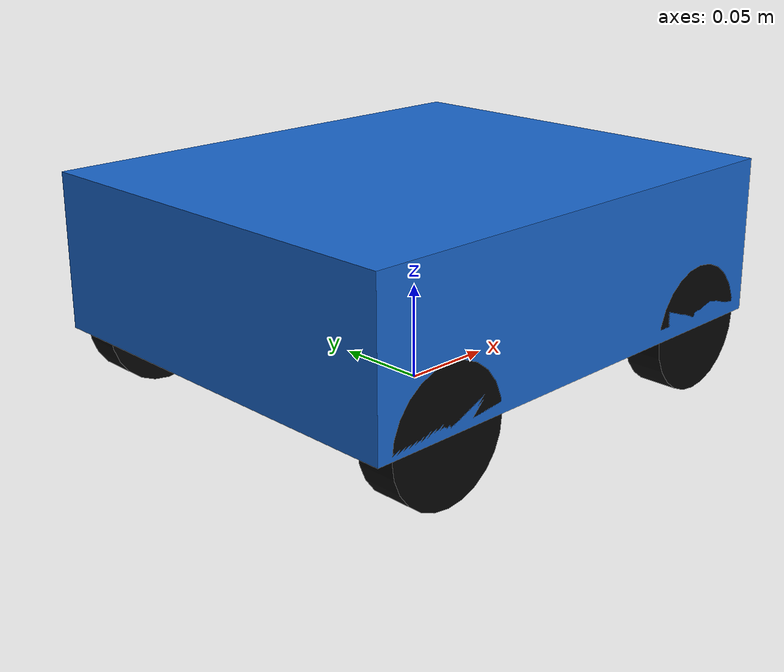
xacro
<?xml version="1.0"?>
<robot xmlns:xacro="http://www.ros.org/wiki/xacro" name="diff_drive_car">

  <!-- 引入差速驱动插件 -->
  <xacro:include filename="$(find botlab_diff_description)/urdf/gazebo_control_plugin.xacro"/>

  <!-- 参数定义 -->
  <xacro:property name="chassis_length" value="0.26"/>     <!-- 底盘长度 26cm -->
  <xacro:property name="chassis_width"  value="0.22"/>     <!-- 底盘宽度 22cm -->
  <xacro:property name="chassis_height" value="0.08"/>    <!-- 底盘高度 8cm -->
  <xacro:property name="wheel_radius"   value="0.0325"/>  <!-- 轮子半径 3.25cm（直径6.5cm） -->
  <xacro:property name="wheel_width"    value="0.02"/>    <!-- 轮胎厚度 2cm -->
  <xacro:property name="wheelbase"      value="0.18"/>    <!-- 前后轮距 -->
  <xacro:property name="track"          value="0.20"/>    <!-- 左右轮距 -->

  <!-- 底盘 -->
  <link name="base_link">
    <visual>
      <geometry>
        <box size="${chassis_length} ${chassis_width} ${chassis_height}"/>
      </geometry>
      <origin xyz="0 0 ${wheel_radius + chassis_height/2}" rpy="0 0 0"/>
      <material name="blue">
        <color rgba="0.1 0.4 0.8 1.0"/>
      </material>
    </visual>

    <collision>
      <geometry>
        <box size="${chassis_length} ${chassis_width} ${chassis_height}"/>
      </geometry>
      <origin xyz="0 0 ${wheel_radius + chassis_height/2}" rpy="0 0 0"/>
    </collision>

    <inertial>
      <mass value="2.0"/>
      <inertia ixx="0.05" ixy="0" ixz="0" iyy="0.05" iyz="0" izz="0.08"/>
    </inertial>
  </link>

  <!-- Gazebo 物理标签 -->
  <gazebo reference="base_link">
    <material>Gazebo/Red</material>
  </gazebo>

  <!-- 定义轮子模板 -->
  <xacro:macro name="wheel" params="prefix x y">
    <link name="wheel_${prefix}">
      <visual>
        <geometry>
          <cylinder radius="${wheel_radius}" length="${wheel_width}"/>
        </geometry>
        <origin xyz="0 0 0" rpy="1.5708 0 0"/>
        <material name="black">
          <color rgba="0.02 0.02 0.02 1"/>
        </material>
      </visual>

      <collision>
        <geometry>
          <cylinder radius="${wheel_radius}" length="${wheel_width}"/>
        </geometry>
        <origin xyz="0 0 0" rpy="1.5708 0 0"/>
      </collision>

      <inertial>
        <mass value="0.1"/>
        <inertia ixx="0.0005" ixy="0" ixz="0" iyy="0.0005" iyz="0" izz="0.0005"/>
      </inertial>

    </link>

    <joint name="joint_${prefix}" type="continuous">
        <parent link="base_link"/>
        <child link="wheel_${prefix}"/>
        <origin xyz="${x} ${y} ${wheel_radius}" rpy="0 0 0"/>
        <axis xyz="0 1 0"/>
        <dynamics damping="0.1" friction="0.1"/>
      </joint>
  </xacro:macro>

  <!-- Gazebo 物理属性 -->
  <gazebo reference="wheel_${prefix}">
    <material>Gazebo/Black</material>
    <mu1>1.0</mu1>
    <mu2>1.0</mu2>
    <kp>1000000.0</kp>
    <kd>100.0</kd>
    <minDepth>0.001</minDepth>
    <maxVel>1.0</maxVel>
  </gazebo>

  <!-- 四个轮子 -->
  <xacro:wheel prefix="fl" x="${ wheelbase/2}"  y="${ track/2}"/>
  <xacro:wheel prefix="fr" x="${ wheelbase/2}"  y="-${ track/2}"/>
  <xacro:wheel prefix="rl" x="-${wheelbase/2}"  y="${ track/2}"/>
  <xacro:wheel prefix="rr" x="-${wheelbase/2}"  y="-${ track/2}"/>

  <!-- 使用差速驱动插件 -->
  <xacro:gazebo_control_plugin/>

</robot>
